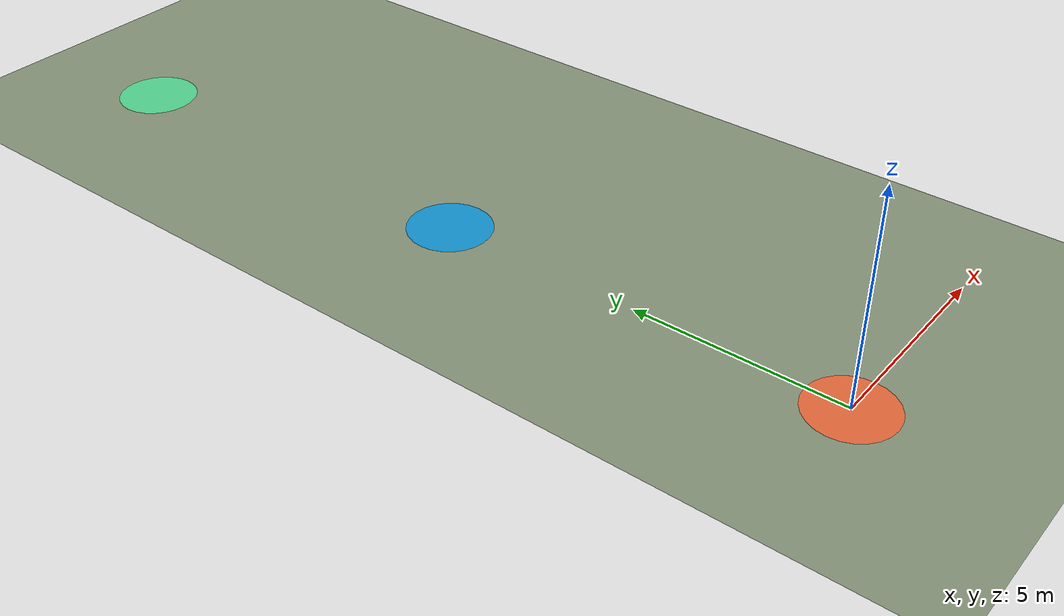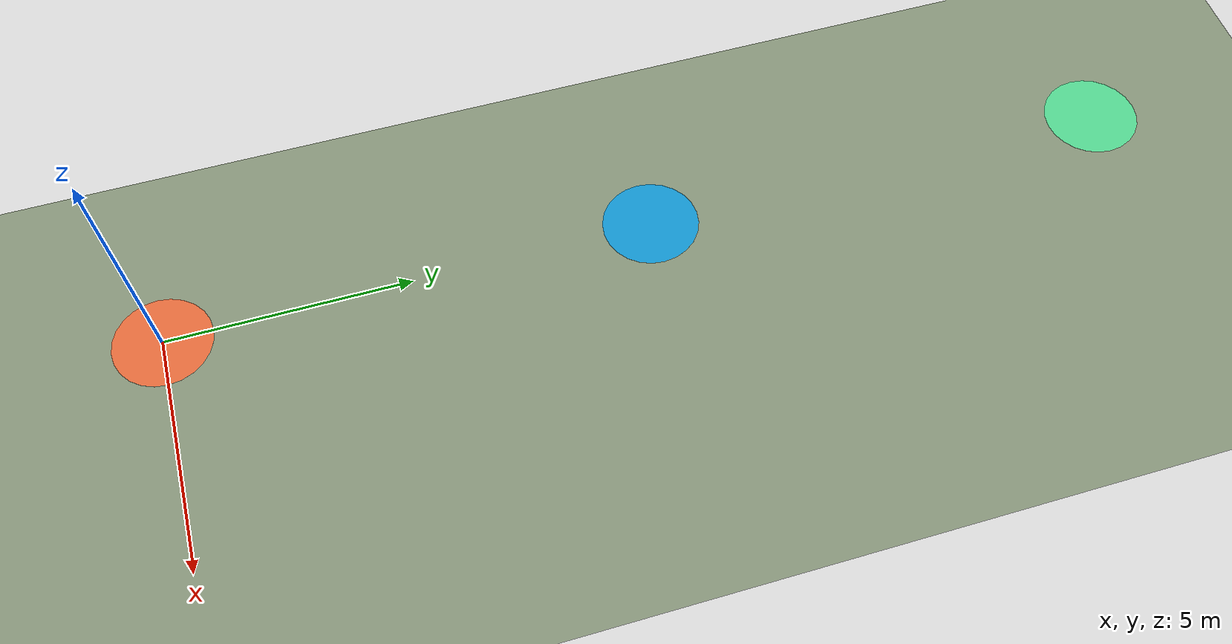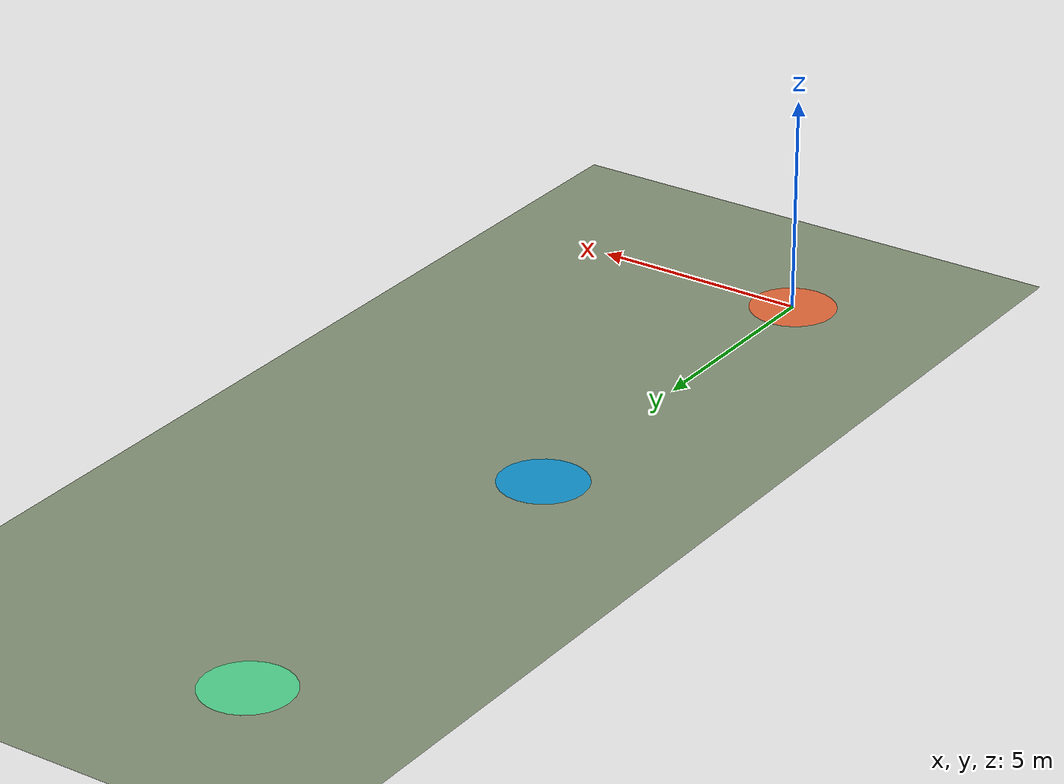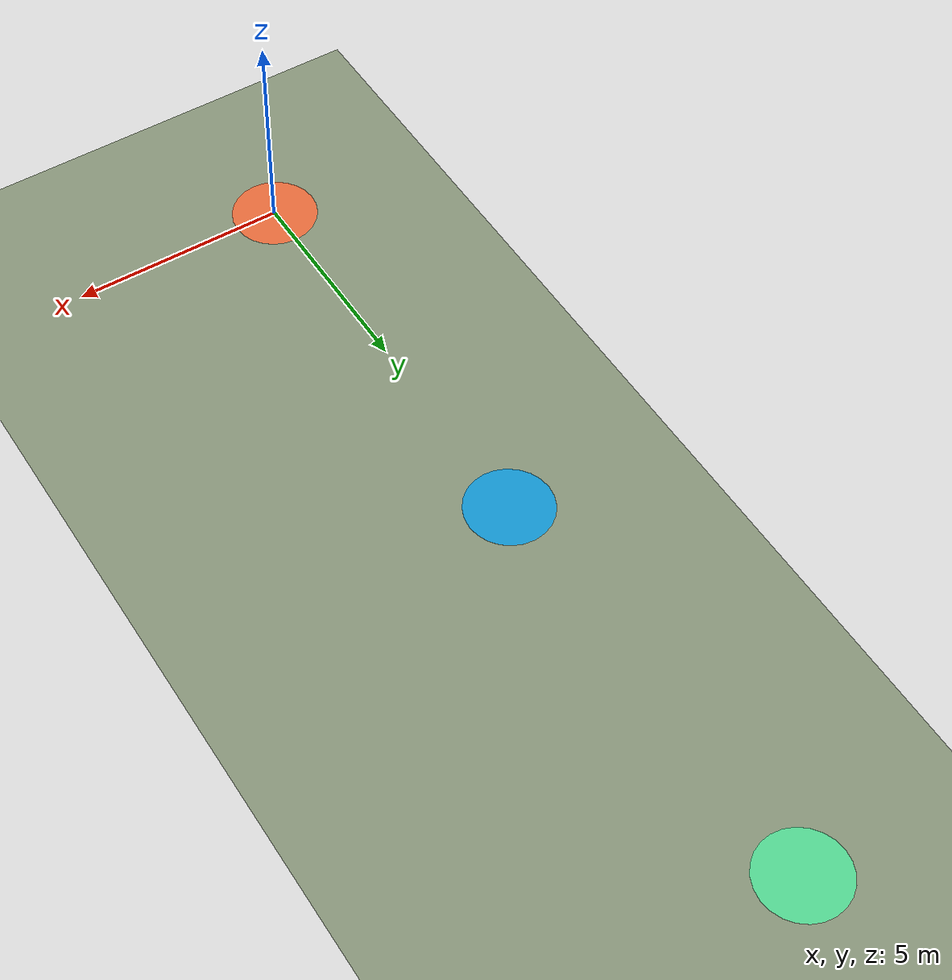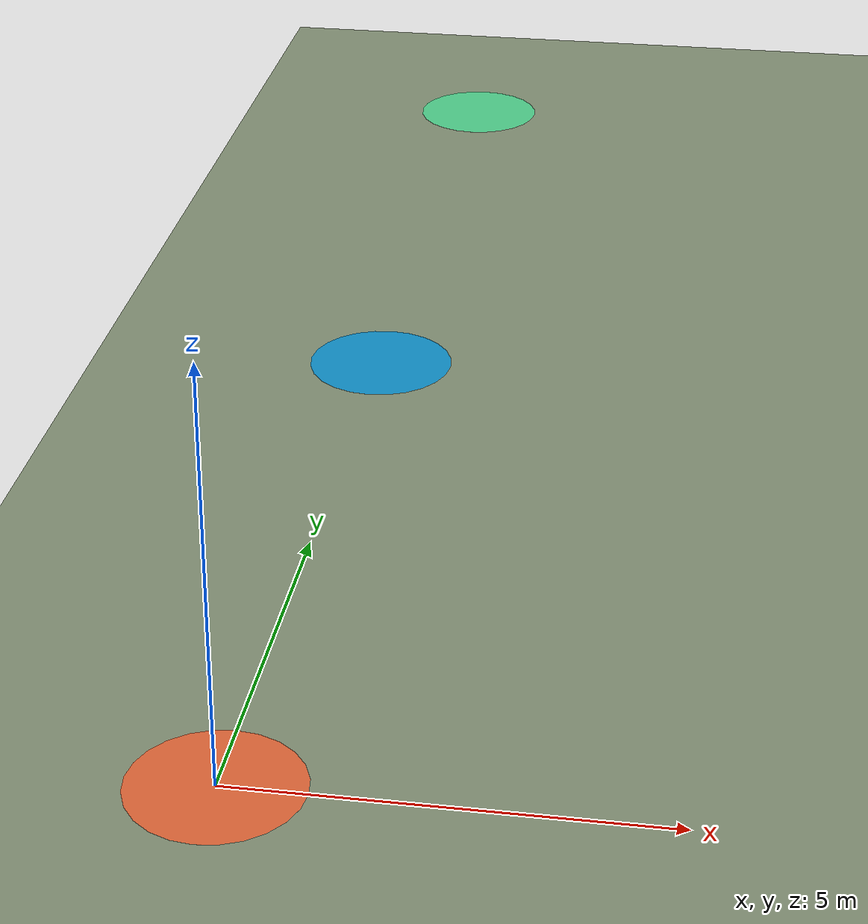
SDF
<?xml version="1.0" ?>
<sdf version="1.9">
  <world name="multi_vehicle_world">

    <!-- Physics configuration -->
    <physics name="1ms" type="ode">
      <max_step_size>0.001</max_step_size>
      <real_time_factor>1.0</real_time_factor>
      <real_time_update_rate>1000</real_time_update_rate>
    </physics>

    <!-- Required plugins -->
    <plugin filename="gz-sim-physics-system"
            name="gz::sim::systems::Physics"/>
    <plugin filename="gz-sim-user-commands-system"
            name="gz::sim::systems::UserCommands"/>
    <plugin filename="gz-sim-scene-broadcaster-system"
            name="gz::sim::systems::SceneBroadcaster"/>
    <plugin filename="gz-sim-sensors-system"
            name="gz::sim::systems::Sensors">
      <render_engine>ogre2</render_engine>
    </plugin>
    <plugin filename="gz-sim-imu-system"
            name="gz::sim::systems::Imu"/>
    <plugin filename="gz-sim-magnetometer-system"
            name="gz::sim::systems::Magnetometer"/>
    <plugin filename="gz-sim-air-pressure-system"
            name="gz::sim::systems::AirPressure"/>

    <!-- Scene -->
    <scene>
      <ambient>0.8 0.8 0.8 1.0</ambient>
      <background>0.34 0.39 0.43 1.0</background>
      <shadows>true</shadows>
      <grid>true</grid>
    </scene>

    <!-- Sun light -->
    <light type="directional" name="sun">
      <cast_shadows>true</cast_shadows>
      <pose>0 0 100 0 0 0</pose>
      <diffuse>0.9 0.9 0.9 1</diffuse>
      <specular>0.3 0.3 0.3 1</specular>
      <attenuation>
        <range>1000</range>
        <constant>0.9</constant>
        <linear>0.01</linear>
        <quadratic>0.001</quadratic>
      </attenuation>
      <direction>-0.5 0.1 -0.9</direction>
    </light>

    <!-- Ground Plane -->
    <model name="ground_plane">
      <static>true</static>
      <link name="link">
        <collision name="collision">
          <geometry>
            <plane>
              <normal>0 0 1</normal>
              <size>1000 1000</size>
            </plane>
          </geometry>
          <surface>
            <friction>
              <ode>
                <mu>100</mu>
                <mu2>100</mu2>
              </ode>
            </friction>
          </surface>
        </collision>
        <visual name="visual">
          <geometry>
            <plane>
              <normal>0 0 1</normal>
              <size>1000 1000</size>
            </plane>
          </geometry>
          <material>
            <ambient>0.5 0.55 0.45 1</ambient>
            <diffuse>0.5 0.55 0.45 1</diffuse>
            <specular>0.01 0.01 0.01 1</specular>
          </material>
        </visual>
      </link>
    </model>

    <!-- Landing Pad markers for 3 vehicles -->
    <model name="landing_pad_0">
      <static>true</static>
      <pose>0 0 0.001 0 0 0</pose>
      <link name="link">
        <visual name="visual">
          <geometry>
            <cylinder>
              <radius>1.0</radius>
              <length>0.001</length>
            </cylinder>
          </geometry>
          <material>
            <ambient>1.0 0.4 0.2 0.8</ambient>
            <diffuse>1.0 0.4 0.2 0.8</diffuse>
          </material>
        </visual>
      </link>
    </model>

    <model name="landing_pad_1">
      <static>true</static>
      <pose>0 10 0.001 0 0 0</pose>
      <link name="link">
        <visual name="visual">
          <geometry>
            <cylinder>
              <radius>1.0</radius>
              <length>0.001</length>
            </cylinder>
          </geometry>
          <material>
            <ambient>0.0 0.6 0.9 0.8</ambient>
            <diffuse>0.0 0.6 0.9 0.8</diffuse>
          </material>
        </visual>
      </link>
    </model>

    <model name="landing_pad_2">
      <static>true</static>
      <pose>0 20 0.001 0 0 0</pose>
      <link name="link">
        <visual name="visual">
          <geometry>
            <cylinder>
              <radius>1.0</radius>
              <length>0.001</length>
            </cylinder>
          </geometry>
          <material>
            <ambient>0.3 0.9 0.6 0.8</ambient>
            <diffuse>0.3 0.9 0.6 0.8</diffuse>
          </material>
        </visual>
      </link>
    </model>

  </world>
</sdf>
